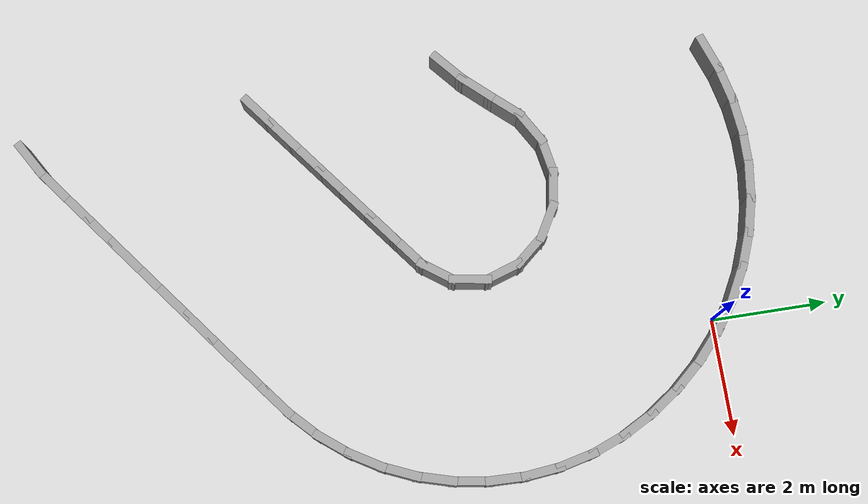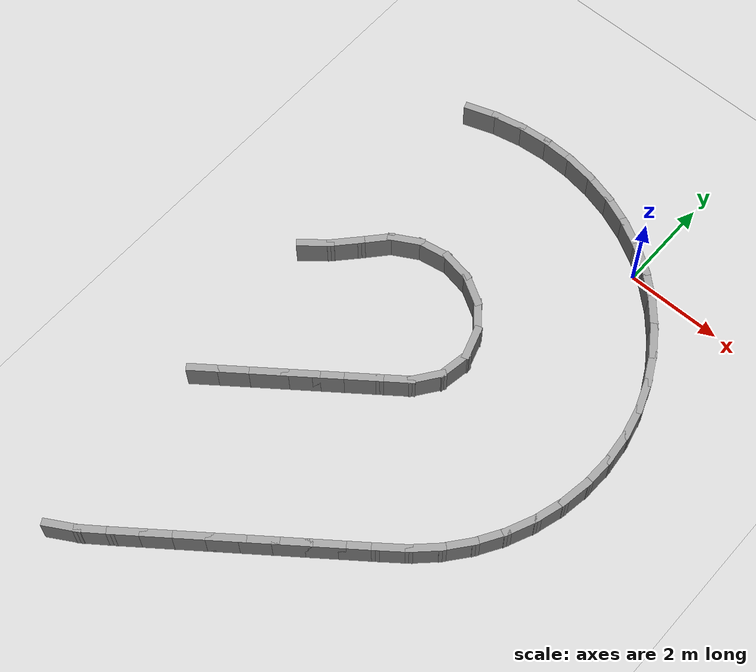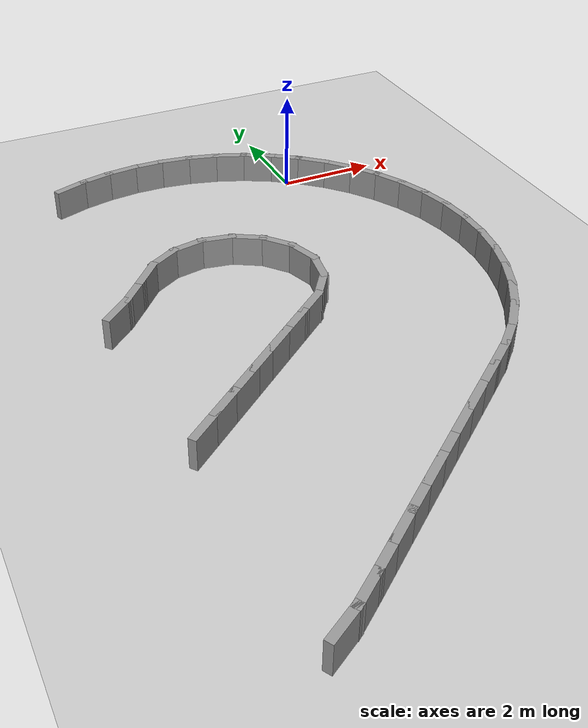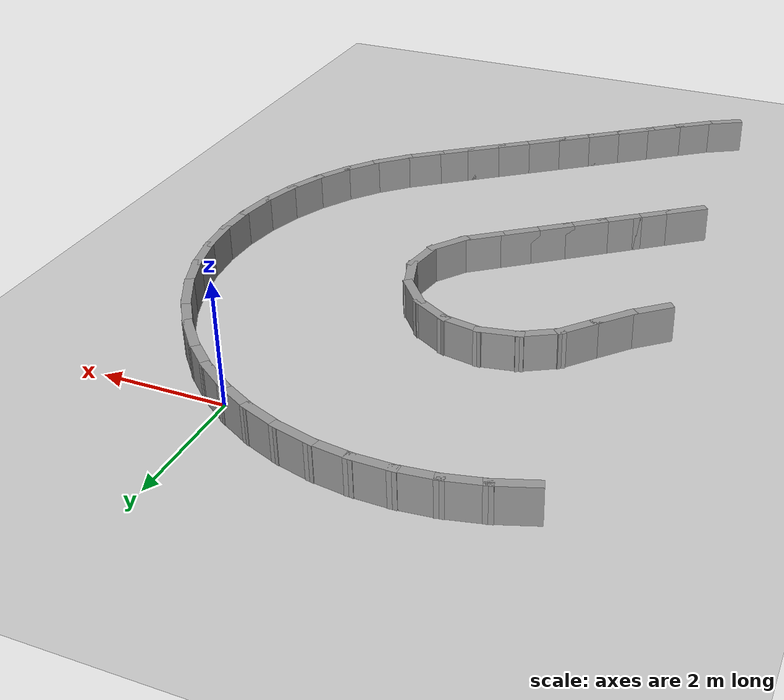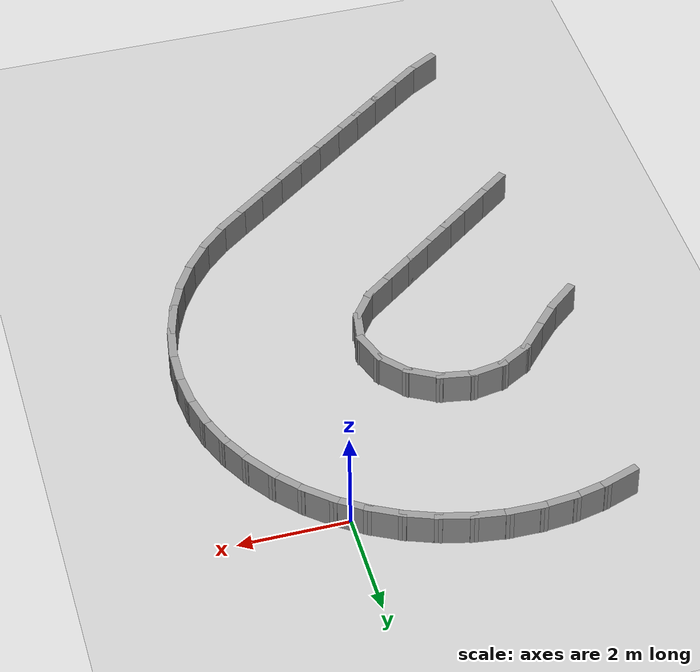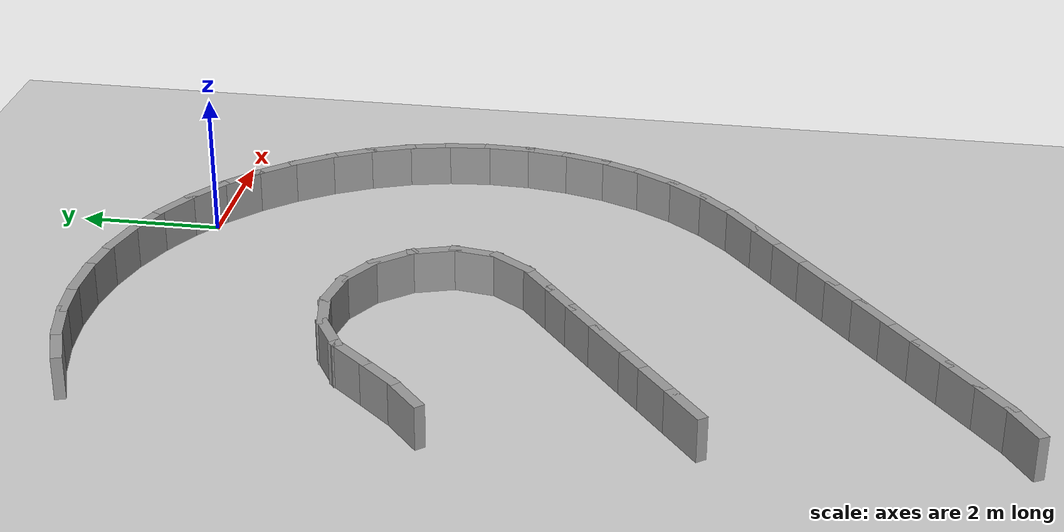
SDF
<sdf version="1.7">
 <world name="default">
  <model name="ground_plane">
   <static>1</static>
   <link name="link">
    <collision name="collision">
     <geometry><plane><normal>0 0 1</normal><size>100 100</size></plane></geometry>
     <surface><friction><ode><mu>100</mu><mu2>50</mu2></ode></friction></surface>
    </collision>
    <visual name="visual">
     <cast_shadows>0</cast_shadows>
     <geometry><plane><normal>0 0 1</normal><size>100 100</size></plane></geometry>
     <material>
      <script><uri>file://media/materials/scripts/gazebo.material</uri><name>Gazebo/Grey</name></script>
     </material>
    </visual>
   </link>
  </model>
  <model name="rand_turn_00">
   <link name="Wall_8">
    <collision name="Wall_8_Collision">
     <geometry><box><size>0.7496 0.1500 0.6000</size></box></geometry>
     <pose>0 0 0.3000 0 -0 0</pose>
    </collision>
    <visual name="Wall_8_Visual">
     <pose>0 0 0.3000 0 -0 0</pose>
     <geometry><box><size>0.7496 0.1500 0.6000</size></box></geometry>
     <material>
      <script><uri>file://media/materials/scripts/gazebo.material</uri><name>Gazebo/Grey</name></script>
      <ambient>1 1 1 1</ambient>
     </material>
    </visual>
    <pose>-4.5553 0.7645 0 0 -0 0.33355</pose>
   </link>
   <link name="Wall_9">
    <collision name="Wall_9_Collision">
     <geometry><box><size>0.7496 0.1500 0.6000</size></box></geometry>
     <pose>0 0 0.3000 0 -0 0</pose>
    </collision>
    <visual name="Wall_9_Visual">
     <pose>0 0 0.3000 0 -0 0</pose>
     <geometry><box><size>0.7496 0.1500 0.6000</size></box></geometry>
     <material>
      <script><uri>file://media/materials/scripts/gazebo.material</uri><name>Gazebo/Grey</name></script>
      <ambient>1 1 1 1</ambient>
     </material>
    </visual>
    <pose>-3.9792 0.9268 0 0 -0 0.21561</pose>
   </link>
   <link name="Wall_10">
    <collision name="Wall_10_Collision">
     <geometry><box><size>0.7496 0.1500 0.6000</size></box></geometry>
     <pose>0 0 0.3000 0 -0 0</pose>
    </collision>
    <visual name="Wall_10_Visual">
     <pose>0 0 0.3000 0 -0 0</pose>
     <geometry><box><size>0.7496 0.1500 0.6000</size></box></geometry>
     <material>
      <script><uri>file://media/materials/scripts/gazebo.material</uri><name>Gazebo/Grey</name></script>
      <ambient>1 1 1 1</ambient>
     </material>
    </visual>
    <pose>-3.3879 1.0202 0 0 -0 0.09768</pose>
   </link>
   <link name="Wall_11">
    <collision name="Wall_11_Collision">
     <geometry><box><size>0.7496 0.1500 0.6000</size></box></geometry>
     <pose>0 0 0.3000 0 -0 0</pose>
    </collision>
    <visual name="Wall_11_Visual">
     <pose>0 0 0.3000 0 -0 0</pose>
     <geometry><box><size>0.7496 0.1500 0.6000</size></box></geometry>
     <material>
      <script><uri>file://media/materials/scripts/gazebo.material</uri><name>Gazebo/Grey</name></script>
      <ambient>1 1 1 1</ambient>
     </material>
    </visual>
    <pose>-2.7898 1.0434 0 0 -0 -0.02026</pose>
   </link>
   <link name="Wall_12">
    <collision name="Wall_12_Collision">
     <geometry><box><size>0.7496 0.1500 0.6000</size></box></geometry>
     <pose>0 0 0.3000 0 -0 0</pose>
    </collision>
    <visual name="Wall_12_Visual">
     <pose>0 0 0.3000 0 -0 0</pose>
     <geometry><box><size>0.7496 0.1500 0.6000</size></box></geometry>
     <material>
      <script><uri>file://media/materials/scripts/gazebo.material</uri><name>Gazebo/Grey</name></script>
      <ambient>1 1 1 1</ambient>
     </material>
    </visual>
    <pose>-2.1931 0.9960 0 0 -0 -0.13820</pose>
   </link>
   <link name="Wall_13">
    <collision name="Wall_13_Collision">
     <geometry><box><size>0.7496 0.1500 0.6000</size></box></geometry>
     <pose>0 0 0.3000 0 -0 0</pose>
    </collision>
    <visual name="Wall_13_Visual">
     <pose>0 0 0.3000 0 -0 0</pose>
     <geometry><box><size>0.7496 0.1500 0.6000</size></box></geometry>
     <material>
      <script><uri>file://media/materials/scripts/gazebo.material</uri><name>Gazebo/Grey</name></script>
      <ambient>1 1 1 1</ambient>
     </material>
    </visual>
    <pose>-1.6061 0.8787 0 0 -0 -0.25614</pose>
   </link>
   <link name="Wall_14">
    <collision name="Wall_14_Collision">
     <geometry><box><size>0.7496 0.1500 0.6000</size></box></geometry>
     <pose>0 0 0.3000 0 -0 0</pose>
    </collision>
    <visual name="Wall_14_Visual">
     <pose>0 0 0.3000 0 -0 0</pose>
     <geometry><box><size>0.7496 0.1500 0.6000</size></box></geometry>
     <material>
      <script><uri>file://media/materials/scripts/gazebo.material</uri><name>Gazebo/Grey</name></script>
      <ambient>1 1 1 1</ambient>
     </material>
    </visual>
    <pose>-1.0370 0.6932 0 0 -0 -0.37407</pose>
   </link>
   <link name="Wall_15">
    <collision name="Wall_15_Collision">
     <geometry><box><size>0.7496 0.1500 0.6000</size></box></geometry>
     <pose>0 0 0.3000 0 -0 0</pose>
    </collision>
    <visual name="Wall_15_Visual">
     <pose>0 0 0.3000 0 -0 0</pose>
     <geometry><box><size>0.7496 0.1500 0.6000</size></box></geometry>
     <material>
      <script><uri>file://media/materials/scripts/gazebo.material</uri><name>Gazebo/Grey</name></script>
      <ambient>1 1 1 1</ambient>
     </material>
    </visual>
    <pose>-0.4937 0.4420 0 0 -0 -0.49201</pose>
   </link>
   <link name="Wall_16">
    <collision name="Wall_16_Collision">
     <geometry><box><size>0.7496 0.1500 0.6000</size></box></geometry>
     <pose>0 0 0.3000 0 -0 0</pose>
    </collision>
    <visual name="Wall_16_Visual">
     <pose>0 0 0.3000 0 -0 0</pose>
     <geometry><box><size>0.7496 0.1500 0.6000</size></box></geometry>
     <material>
      <script><uri>file://media/materials/scripts/gazebo.material</uri><name>Gazebo/Grey</name></script>
      <ambient>1 1 1 1</ambient>
     </material>
    </visual>
    <pose>0.0163 0.1287 0 0 -0 -0.60995</pose>
   </link>
   <link name="Wall_17">
    <collision name="Wall_17_Collision">
     <geometry><box><size>0.7496 0.1500 0.6000</size></box></geometry>
     <pose>0 0 0.3000 0 -0 0</pose>
    </collision>
    <visual name="Wall_17_Visual">
     <pose>0 0 0.3000 0 -0 0</pose>
     <geometry><box><size>0.7496 0.1500 0.6000</size></box></geometry>
     <material>
      <script><uri>file://media/materials/scripts/gazebo.material</uri><name>Gazebo/Grey</name></script>
      <ambient>1 1 1 1</ambient>
     </material>
    </visual>
    <pose>0.4859 -0.2426 0 0 -0 -0.72788</pose>
   </link>
   <link name="Wall_18">
    <collision name="Wall_18_Collision">
     <geometry><box><size>0.7496 0.1500 0.6000</size></box></geometry>
     <pose>0 0 0.3000 0 -0 0</pose>
    </collision>
    <visual name="Wall_18_Visual">
     <pose>0 0 0.3000 0 -0 0</pose>
     <geometry><box><size>0.7496 0.1500 0.6000</size></box></geometry>
     <material>
      <script><uri>file://media/materials/scripts/gazebo.material</uri><name>Gazebo/Grey</name></script>
      <ambient>1 1 1 1</ambient>
     </material>
    </visual>
    <pose>0.9086 -0.6664 0 0 -0 -0.84582</pose>
   </link>
   <link name="Wall_19">
    <collision name="Wall_19_Collision">
     <geometry><box><size>0.7496 0.1500 0.6000</size></box></geometry>
     <pose>0 0 0.3000 0 -0 0</pose>
    </collision>
    <visual name="Wall_19_Visual">
     <pose>0 0 0.3000 0 -0 0</pose>
     <geometry><box><size>0.7496 0.1500 0.6000</size></box></geometry>
     <material>
      <script><uri>file://media/materials/scripts/gazebo.material</uri><name>Gazebo/Grey</name></script>
      <ambient>1 1 1 1</ambient>
     </material>
    </visual>
    <pose>1.2784 -1.1371 0 0 -0 -0.96376</pose>
   </link>
   <link name="Wall_20">
    <collision name="Wall_20_Collision">
     <geometry><box><size>0.7496 0.1500 0.6000</size></box></geometry>
     <pose>0 0 0.3000 0 -0 0</pose>
    </collision>
    <visual name="Wall_20_Visual">
     <pose>0 0 0.3000 0 -0 0</pose>
     <geometry><box><size>0.7496 0.1500 0.6000</size></box></geometry>
     <material>
      <script><uri>file://media/materials/scripts/gazebo.material</uri><name>Gazebo/Grey</name></script>
      <ambient>1 1 1 1</ambient>
     </material>
    </visual>
    <pose>1.5903 -1.6480 0 0 -0 -1.08170</pose>
   </link>
   <link name="Wall_21">
    <collision name="Wall_21_Collision">
     <geometry><box><size>0.7495 0.1500 0.6000</size></box></geometry>
     <pose>0 0 0.3000 0 -0 0</pose>
    </collision>
    <visual name="Wall_21_Visual">
     <pose>0 0 0.3000 0 -0 0</pose>
     <geometry><box><size>0.7495 0.1500 0.6000</size></box></geometry>
     <material>
      <script><uri>file://media/materials/scripts/gazebo.material</uri><name>Gazebo/Grey</name></script>
      <ambient>1 1 1 1</ambient>
     </material>
    </visual>
    <pose>1.8387 -2.1925 0 0 -0 -1.20371</pose>
   </link>
   <link name="Wall_22">
    <collision name="Wall_22_Collision">
     <geometry><box><size>0.7495 0.1500 0.6000</size></box></geometry>
     <pose>0 0 0.3000 0 -0 0</pose>
    </collision>
    <visual name="Wall_22_Visual">
     <pose>0 0 0.3000 0 -0 0</pose>
     <geometry><box><size>0.7495 0.1500 0.6000</size></box></geometry>
     <material>
      <script><uri>file://media/materials/scripts/gazebo.material</uri><name>Gazebo/Grey</name></script>
      <ambient>1 1 1 1</ambient>
     </material>
    </visual>
    <pose>2.0146 -2.7641 0 0 -0 -1.34086</pose>
   </link>
   <link name="Wall_23">
    <collision name="Wall_23_Collision">
     <geometry><box><size>0.7495 0.1500 0.6000</size></box></geometry>
     <pose>0 0 0.3000 0 -0 0</pose>
    </collision>
    <visual name="Wall_23_Visual">
     <pose>0 0 0.3000 0 -0 0</pose>
     <geometry><box><size>0.7495 0.1500 0.6000</size></box></geometry>
     <material>
      <script><uri>file://media/materials/scripts/gazebo.material</uri><name>Gazebo/Grey</name></script>
      <ambient>1 1 1 1</ambient>
     </material>
    </visual>
    <pose>2.1131 -3.3543 0 0 -0 -1.47015</pose>
   </link>
   <link name="Wall_24">
    <collision name="Wall_24_Collision">
     <geometry><box><size>0.7496 0.1500 0.6000</size></box></geometry>
     <pose>0 0 0.3000 0 -0 0</pose>
    </collision>
    <visual name="Wall_24_Visual">
     <pose>0 0 0.3000 0 -0 0</pose>
     <geometry><box><size>0.7496 0.1500 0.6000</size></box></geometry>
     <material>
      <script><uri>file://media/materials/scripts/gazebo.material</uri><name>Gazebo/Grey</name></script>
      <ambient>1 1 1 1</ambient>
     </material>
    </visual>
    <pose>2.1347 -3.9522 0 0 -0 -1.59920</pose>
   </link>
   <link name="Wall_25">
    <collision name="Wall_25_Collision">
     <geometry><box><size>0.7496 0.1500 0.6000</size></box></geometry>
     <pose>0 0 0.3000 0 -0 0</pose>
    </collision>
    <visual name="Wall_25_Visual">
     <pose>0 0 0.3000 0 -0 0</pose>
     <geometry><box><size>0.7496 0.1500 0.6000</size></box></geometry>
     <material>
      <script><uri>file://media/materials/scripts/gazebo.material</uri><name>Gazebo/Grey</name></script>
      <ambient>1 1 1 1</ambient>
     </material>
    </visual>
    <pose>2.0789 -4.5479 0 0 -0 -1.72908</pose>
   </link>
   <link name="Wall_26">
    <collision name="Wall_26_Collision">
     <geometry><box><size>0.7496 0.1500 0.6000</size></box></geometry>
     <pose>0 0 0.3000 0 -0 0</pose>
    </collision>
    <visual name="Wall_26_Visual">
     <pose>0 0 0.3000 0 -0 0</pose>
     <geometry><box><size>0.7496 0.1500 0.6000</size></box></geometry>
     <material>
      <script><uri>file://media/materials/scripts/gazebo.material</uri><name>Gazebo/Grey</name></script>
      <ambient>1 1 1 1</ambient>
     </material>
    </visual>
    <pose>1.9465 -5.1314 0 0 -0 -1.85879</pose>
   </link>
   <link name="Wall_27">
    <collision name="Wall_27_Collision">
     <geometry><box><size>0.7495 0.1500 0.6000</size></box></geometry>
     <pose>0 0 0.3000 0 -0 0</pose>
    </collision>
    <visual name="Wall_27_Visual">
     <pose>0 0 0.3000 0 -0 0</pose>
     <geometry><box><size>0.7495 0.1500 0.6000</size></box></geometry>
     <material>
      <script><uri>file://media/materials/scripts/gazebo.material</uri><name>Gazebo/Grey</name></script>
      <ambient>1 1 1 1</ambient>
     </material>
    </visual>
    <pose>1.7400 -5.6929 0 0 -0 -1.98783</pose>
   </link>
   <link name="Wall_28">
    <collision name="Wall_28_Collision">
     <geometry><box><size>0.7495 0.1500 0.6000</size></box></geometry>
     <pose>0 0 0.3000 0 -0 0</pose>
    </collision>
    <visual name="Wall_28_Visual">
     <pose>0 0 0.3000 0 -0 0</pose>
     <geometry><box><size>0.7495 0.1500 0.6000</size></box></geometry>
     <material>
      <script><uri>file://media/materials/scripts/gazebo.material</uri><name>Gazebo/Grey</name></script>
      <ambient>1 1 1 1</ambient>
     </material>
    </visual>
    <pose>1.4629 -6.2231 0 0 -0 -2.11688</pose>
   </link>
   <link name="Wall_29">
    <collision name="Wall_29_Collision">
     <geometry><box><size>0.7495 0.1500 0.6000</size></box></geometry>
     <pose>0 0 0.3000 0 -0 0</pose>
    </collision>
    <visual name="Wall_29_Visual">
     <pose>0 0 0.3000 0 -0 0</pose>
     <geometry><box><size>0.7495 0.1500 0.6000</size></box></geometry>
     <material>
      <script><uri>file://media/materials/scripts/gazebo.material</uri><name>Gazebo/Grey</name></script>
      <ambient>1 1 1 1</ambient>
     </material>
    </visual>
    <pose>1.1198 -6.7133 0 0 -0 -2.24592</pose>
   </link>
   <link name="Wall_30">
    <collision name="Wall_30_Collision">
     <geometry><box><size>0.7496 0.1500 0.6000</size></box></geometry>
     <pose>0 0 0.3000 0 -0 0</pose>
    </collision>
    <visual name="Wall_30_Visual">
     <pose>0 0 0.3000 0 -0 0</pose>
     <geometry><box><size>0.7496 0.1500 0.6000</size></box></geometry>
     <material>
      <script><uri>file://media/materials/scripts/gazebo.material</uri><name>Gazebo/Grey</name></script>
      <ambient>1 1 1 1</ambient>
     </material>
    </visual>
    <pose>0.7165 -7.1553 0 0 -0 -2.37497</pose>
   </link>
   <link name="Wall_31">
    <collision name="Wall_31_Collision">
     <geometry><box><size>0.7499 0.1500 0.6000</size></box></geometry>
     <pose>0 0 0.3000 0 -0 0</pose>
    </collision>
    <visual name="Wall_31_Visual">
     <pose>0 0 0.3000 0 -0 0</pose>
     <geometry><box><size>0.7499 0.1500 0.6000</size></box></geometry>
     <material>
      <script><uri>file://media/materials/scripts/gazebo.material</uri><name>Gazebo/Grey</name></script>
      <ambient>1 1 1 1</ambient>
     </material>
    </visual>
    <pose>0.2639 -7.5475 0 0 -0 -2.48004</pose>
   </link>
   <link name="Wall_32">
    <collision name="Wall_32_Collision">
     <geometry><box><size>0.7500 0.1500 0.6000</size></box></geometry>
     <pose>0 0 0.3000 0 -0 0</pose>
    </collision>
    <visual name="Wall_32_Visual">
     <pose>0 0 0.3000 0 -0 0</pose>
     <geometry><box><size>0.7500 0.1500 0.6000</size></box></geometry>
     <material>
      <script><uri>file://media/materials/scripts/gazebo.material</uri><name>Gazebo/Grey</name></script>
      <ambient>1 1 1 1</ambient>
     </material>
    </visual>
    <pose>-0.2110 -7.9140 0 0 -0 -2.48869</pose>
   </link>
   <link name="Wall_33">
    <collision name="Wall_33_Collision">
     <geometry><box><size>0.7500 0.1500 0.6000</size></box></geometry>
     <pose>0 0 0.3000 0 -0 0</pose>
    </collision>
    <visual name="Wall_33_Visual">
     <pose>0 0 0.3000 0 -0 0</pose>
     <geometry><box><size>0.7500 0.1500 0.6000</size></box></geometry>
     <material>
      <script><uri>file://media/materials/scripts/gazebo.material</uri><name>Gazebo/Grey</name></script>
      <ambient>1 1 1 1</ambient>
     </material>
    </visual>
    <pose>-0.6876 -8.2785 0 0 -0 -2.48869</pose>
   </link>
   <link name="Wall_34">
    <collision name="Wall_34_Collision">
     <geometry><box><size>0.7500 0.1500 0.6000</size></box></geometry>
     <pose>0 0 0.3000 0 -0 0</pose>
    </collision>
    <visual name="Wall_34_Visual">
     <pose>0 0 0.3000 0 -0 0</pose>
     <geometry><box><size>0.7500 0.1500 0.6000</size></box></geometry>
     <material>
      <script><uri>file://media/materials/scripts/gazebo.material</uri><name>Gazebo/Grey</name></script>
      <ambient>1 1 1 1</ambient>
     </material>
    </visual>
    <pose>-1.1642 -8.6430 0 0 -0 -2.48869</pose>
   </link>
   <link name="Wall_35">
    <collision name="Wall_35_Collision">
     <geometry><box><size>0.7500 0.1500 0.6000</size></box></geometry>
     <pose>0 0 0.3000 0 -0 0</pose>
    </collision>
    <visual name="Wall_35_Visual">
     <pose>0 0 0.3000 0 -0 0</pose>
     <geometry><box><size>0.7500 0.1500 0.6000</size></box></geometry>
     <material>
      <script><uri>file://media/materials/scripts/gazebo.material</uri><name>Gazebo/Grey</name></script>
      <ambient>1 1 1 1</ambient>
     </material>
    </visual>
    <pose>-1.6408 -9.0075 0 0 -0 -2.48869</pose>
   </link>
   <link name="Wall_36">
    <collision name="Wall_36_Collision">
     <geometry><box><size>0.7500 0.1500 0.6000</size></box></geometry>
     <pose>0 0 0.3000 0 -0 0</pose>
    </collision>
    <visual name="Wall_36_Visual">
     <pose>0 0 0.3000 0 -0 0</pose>
     <geometry><box><size>0.7500 0.1500 0.6000</size></box></geometry>
     <material>
      <script><uri>file://media/materials/scripts/gazebo.material</uri><name>Gazebo/Grey</name></script>
      <ambient>1 1 1 1</ambient>
     </material>
    </visual>
    <pose>-2.1174 -9.3720 0 0 -0 -2.48869</pose>
   </link>
   <link name="Wall_37">
    <collision name="Wall_37_Collision">
     <geometry><box><size>0.7500 0.1500 0.6000</size></box></geometry>
     <pose>0 0 0.3000 0 -0 0</pose>
    </collision>
    <visual name="Wall_37_Visual">
     <pose>0 0 0.3000 0 -0 0</pose>
     <geometry><box><size>0.7500 0.1500 0.6000</size></box></geometry>
     <material>
      <script><uri>file://media/materials/scripts/gazebo.material</uri><name>Gazebo/Grey</name></script>
      <ambient>1 1 1 1</ambient>
     </material>
    </visual>
    <pose>-2.5940 -9.7365 0 0 -0 -2.48869</pose>
   </link>
   <link name="Wall_38">
    <collision name="Wall_38_Collision">
     <geometry><box><size>0.7500 0.1500 0.6000</size></box></geometry>
     <pose>0 0 0.3000 0 -0 0</pose>
    </collision>
    <visual name="Wall_38_Visual">
     <pose>0 0 0.3000 0 -0 0</pose>
     <geometry><box><size>0.7500 0.1500 0.6000</size></box></geometry>
     <material>
      <script><uri>file://media/materials/scripts/gazebo.material</uri><name>Gazebo/Grey</name></script>
      <ambient>1 1 1 1</ambient>
     </material>
    </visual>
    <pose>-3.0706 -10.1010 0 0 -0 -2.48869</pose>
   </link>
   <link name="Wall_39">
    <collision name="Wall_39_Collision">
     <geometry><box><size>0.7500 0.1500 0.6000</size></box></geometry>
     <pose>0 0 0.3000 0 -0 0</pose>
    </collision>
    <visual name="Wall_39_Visual">
     <pose>0 0 0.3000 0 -0 0</pose>
     <geometry><box><size>0.7500 0.1500 0.6000</size></box></geometry>
     <material>
      <script><uri>file://media/materials/scripts/gazebo.material</uri><name>Gazebo/Grey</name></script>
      <ambient>1 1 1 1</ambient>
     </material>
    </visual>
    <pose>-3.5472 -10.4655 0 0 -0 -2.48869</pose>
   </link>
   <link name="Wall_40">
    <collision name="Wall_40_Collision">
     <geometry><box><size>0.7499 0.1500 0.6000</size></box></geometry>
     <pose>0 0 0.3000 0 -0 0</pose>
    </collision>
    <visual name="Wall_40_Visual">
     <pose>0 0 0.3000 0 -0 0</pose>
     <geometry><box><size>0.7499 0.1500 0.6000</size></box></geometry>
     <material>
      <script><uri>file://media/materials/scripts/gazebo.material</uri><name>Gazebo/Grey</name></script>
      <ambient>1 1 1 1</ambient>
     </material>
    </visual>
    <pose>-4.0258 -10.8273 0 0 -0 -2.49975</pose>
   </link>
   <link name="Wall_41">
    <collision name="Wall_41_Collision">
     <geometry><box><size>0.7495 0.1500 0.6000</size></box></geometry>
     <pose>0 0 0.3000 0 -0 0</pose>
    </collision>
    <visual name="Wall_41_Visual">
     <pose>0 0 0.3000 0 -0 0</pose>
     <geometry><box><size>0.7495 0.1500 0.6000</size></box></geometry>
     <material>
      <script><uri>file://media/materials/scripts/gazebo.material</uri><name>Gazebo/Grey</name></script>
      <ambient>1 1 1 1</ambient>
     </material>
    </visual>
    <pose>-4.5245 -11.1586 0 0 -0 -2.61095</pose>
   </link>
   <link name="Wall_72">
    <collision name="Wall_72_Collision">
     <geometry><box><size>0.7496 0.1500 0.6000</size></box></geometry>
     <pose>0 0 0.3000 0 -0 0</pose>
    </collision>
    <visual name="Wall_72_Visual">
     <pose>0 0 0.3000 0 -0 0</pose>
     <geometry><box><size>0.7496 0.1500 0.6000</size></box></geometry>
     <material>
      <script><uri>file://media/materials/scripts/gazebo.material</uri><name>Gazebo/Grey</name></script>
      <ambient>1 1 1 1</ambient>
     </material>
    </visual>
    <pose>-5.0304 -3.7851 0 0 -0 0.70458</pose>
   </link>
   <link name="Wall_73">
    <collision name="Wall_73_Collision">
     <geometry><box><size>0.7496 0.1500 0.6000</size></box></geometry>
     <pose>0 0 0.3000 0 -0 0</pose>
    </collision>
    <visual name="Wall_73_Visual">
     <pose>0 0 0.3000 0 -0 0</pose>
     <geometry><box><size>0.7496 0.1500 0.6000</size></box></geometry>
     <material>
      <script><uri>file://media/materials/scripts/gazebo.material</uri><name>Gazebo/Grey</name></script>
      <ambient>1 1 1 1</ambient>
     </material>
    </visual>
    <pose>-4.5991 -3.3701 0 0 -0 0.82754</pose>
   </link>
   <link name="Wall_74">
    <collision name="Wall_74_Collision">
     <geometry><box><size>0.7484 0.1500 0.6000</size></box></geometry>
     <pose>0 0 0.3000 0 -0 0</pose>
    </collision>
    <visual name="Wall_74_Visual">
     <pose>0 0 0.3000 0 -0 0</pose>
     <geometry><box><size>0.7484 0.1500 0.6000</size></box></geometry>
     <material>
      <script><uri>file://media/materials/scripts/gazebo.material</uri><name>Gazebo/Grey</name></script>
      <ambient>1 1 1 1</ambient>
     </material>
    </visual>
    <pose>-4.1970 -2.9261 0 0 -0 0.84232</pose>
   </link>
   <link name="Wall_75">
    <collision name="Wall_75_Collision">
     <geometry><box><size>0.7470 0.1500 0.6000</size></box></geometry>
     <pose>0 0 0.3000 0 -0 0</pose>
    </collision>
    <visual name="Wall_75_Visual">
     <pose>0 0 0.3000 0 -0 0</pose>
     <geometry><box><size>0.7470 0.1500 0.6000</size></box></geometry>
     <material>
      <script><uri>file://media/materials/scripts/gazebo.material</uri><name>Gazebo/Grey</name></script>
      <ambient>1 1 1 1</ambient>
     </material>
    </visual>
    <pose>-3.7388 -2.5547 0 0 -0 0.51964</pose>
   </link>
   <link name="Wall_76">
    <collision name="Wall_76_Collision">
     <geometry><box><size>0.7470 0.1500 0.6000</size></box></geometry>
     <pose>0 0 0.3000 0 -0 0</pose>
    </collision>
    <visual name="Wall_76_Visual">
     <pose>0 0 0.3000 0 -0 0</pose>
     <geometry><box><size>0.7470 0.1500 0.6000</size></box></geometry>
     <material>
      <script><uri>file://media/materials/scripts/gazebo.material</uri><name>Gazebo/Grey</name></script>
      <ambient>1 1 1 1</ambient>
     </material>
    </visual>
    <pose>-3.1856 -2.3551 0 0 -0 0.17290</pose>
   </link>
   <link name="Wall_77">
    <collision name="Wall_77_Collision">
     <geometry><box><size>0.7470 0.1500 0.6000</size></box></geometry>
     <pose>0 0 0.3000 0 -0 0</pose>
    </collision>
    <visual name="Wall_77_Visual">
     <pose>0 0 0.3000 0 -0 0</pose>
     <geometry><box><size>0.7470 0.1500 0.6000</size></box></geometry>
     <material>
      <script><uri>file://media/materials/scripts/gazebo.material</uri><name>Gazebo/Grey</name></script>
      <ambient>1 1 1 1</ambient>
     </material>
    </visual>
    <pose>-2.5976 -2.3555 0 0 -0 -0.17428</pose>
   </link>
   <link name="Wall_78">
    <collision name="Wall_78_Collision">
     <geometry><box><size>0.7470 0.1500 0.6000</size></box></geometry>
     <pose>0 0 0.3000 0 -0 0</pose>
    </collision>
    <visual name="Wall_78_Visual">
     <pose>0 0 0.3000 0 -0 0</pose>
     <geometry><box><size>0.7470 0.1500 0.6000</size></box></geometry>
     <material>
      <script><uri>file://media/materials/scripts/gazebo.material</uri><name>Gazebo/Grey</name></script>
      <ambient>1 1 1 1</ambient>
     </material>
    </visual>
    <pose>-2.0448 -2.5558 0 0 -0 -0.52104</pose>
   </link>
   <link name="Wall_79">
    <collision name="Wall_79_Collision">
     <geometry><box><size>0.7470 0.1500 0.6000</size></box></geometry>
     <pose>0 0 0.3000 0 -0 0</pose>
    </collision>
    <visual name="Wall_79_Visual">
     <pose>0 0 0.3000 0 -0 0</pose>
     <geometry><box><size>0.7470 0.1500 0.6000</size></box></geometry>
     <material>
      <script><uri>file://media/materials/scripts/gazebo.material</uri><name>Gazebo/Grey</name></script>
      <ambient>1 1 1 1</ambient>
     </material>
    </visual>
    <pose>-1.5929 -2.9321 0 0 -0 -0.86778</pose>
   </link>
   <link name="Wall_80">
    <collision name="Wall_80_Collision">
     <geometry><box><size>0.7441 0.1500 0.6000</size></box></geometry>
     <pose>0 0 0.3000 0 -0 0</pose>
    </collision>
    <visual name="Wall_80_Visual">
     <pose>0 0 0.3000 0 -0 0</pose>
     <geometry><box><size>0.7441 0.1500 0.6000</size></box></geometry>
     <material>
      <script><uri>file://media/materials/scripts/gazebo.material</uri><name>Gazebo/Grey</name></script>
      <ambient>1 1 1 1</ambient>
     </material>
    </visual>
    <pose>-1.3071 -3.4420 0 0 -0 -1.25307</pose>
   </link>
   <link name="Wall_81">
    <collision name="Wall_81_Collision">
     <geometry><box><size>0.7446 0.1500 0.6000</size></box></geometry>
     <pose>0 0 0.3000 0 -0 0</pose>
    </collision>
    <visual name="Wall_81_Visual">
     <pose>0 0 0.3000 0 -0 0</pose>
     <geometry><box><size>0.7446 0.1500 0.6000</size></box></geometry>
     <material>
      <script><uri>file://media/materials/scripts/gazebo.material</uri><name>Gazebo/Grey</name></script>
      <ambient>1 1 1 1</ambient>
     </material>
    </visual>
    <pose>-1.2618 -4.0177 0 0 -0 -1.73110</pose>
   </link>
   <link name="Wall_82">
    <collision name="Wall_82_Collision">
     <geometry><box><size>0.7445 0.1500 0.6000</size></box></geometry>
     <pose>0 0 0.3000 0 -0 0</pose>
    </collision>
    <visual name="Wall_82_Visual">
     <pose>0 0 0.3000 0 -0 0</pose>
     <geometry><box><size>0.7445 0.1500 0.6000</size></box></geometry>
     <material>
      <script><uri>file://media/materials/scripts/gazebo.material</uri><name>Gazebo/Grey</name></script>
      <ambient>1 1 1 1</ambient>
     </material>
    </visual>
    <pose>-1.4839 -4.5517 0 0 -0 -2.19899</pose>
   </link>
   <link name="Wall_83">
    <collision name="Wall_83_Collision">
     <geometry><box><size>0.7500 0.1500 0.6000</size></box></geometry>
     <pose>0 0 0.3000 0 -0 0</pose>
    </collision>
    <visual name="Wall_83_Visual">
     <pose>0 0 0.3000 0 -0 0</pose>
     <geometry><box><size>0.7500 0.1500 0.6000</size></box></geometry>
     <material>
      <script><uri>file://media/materials/scripts/gazebo.material</uri><name>Gazebo/Grey</name></script>
      <ambient>1 1 1 1</ambient>
     </material>
    </visual>
    <pose>-1.8964 -4.9751 0 0 -0 -2.48584</pose>
   </link>
   <link name="Wall_84">
    <collision name="Wall_84_Collision">
     <geometry><box><size>0.7500 0.1500 0.6000</size></box></geometry>
     <pose>0 0 0.3000 0 -0 0</pose>
    </collision>
    <visual name="Wall_84_Visual">
     <pose>0 0 0.3000 0 -0 0</pose>
     <geometry><box><size>0.7500 0.1500 0.6000</size></box></geometry>
     <material>
      <script><uri>file://media/materials/scripts/gazebo.material</uri><name>Gazebo/Grey</name></script>
      <ambient>1 1 1 1</ambient>
     </material>
    </visual>
    <pose>-2.3725 -5.3403 0 0 -0 -2.48869</pose>
   </link>
   <link name="Wall_85">
    <collision name="Wall_85_Collision">
     <geometry><box><size>0.7500 0.1500 0.6000</size></box></geometry>
     <pose>0 0 0.3000 0 -0 0</pose>
    </collision>
    <visual name="Wall_85_Visual">
     <pose>0 0 0.3000 0 -0 0</pose>
     <geometry><box><size>0.7500 0.1500 0.6000</size></box></geometry>
     <material>
      <script><uri>file://media/materials/scripts/gazebo.material</uri><name>Gazebo/Grey</name></script>
      <ambient>1 1 1 1</ambient>
     </material>
    </visual>
    <pose>-2.8491 -5.7048 0 0 -0 -2.48869</pose>
   </link>
   <link name="Wall_86">
    <collision name="Wall_86_Collision">
     <geometry><box><size>0.7500 0.1500 0.6000</size></box></geometry>
     <pose>0 0 0.3000 0 -0 0</pose>
    </collision>
    <visual name="Wall_86_Visual">
     <pose>0 0 0.3000 0 -0 0</pose>
     <geometry><box><size>0.7500 0.1500 0.6000</size></box></geometry>
     <material>
      <script><uri>file://media/materials/scripts/gazebo.material</uri><name>Gazebo/Grey</name></script>
      <ambient>1 1 1 1</ambient>
     </material>
    </visual>
    <pose>-3.3257 -6.0693 0 0 -0 -2.48869</pose>
   </link>
   <link name="Wall_87">
    <collision name="Wall_87_Collision">
     <geometry><box><size>0.7500 0.1500 0.6000</size></box></geometry>
     <pose>0 0 0.3000 0 -0 0</pose>
    </collision>
    <visual name="Wall_87_Visual">
     <pose>0 0 0.3000 0 -0 0</pose>
     <geometry><box><size>0.7500 0.1500 0.6000</size></box></geometry>
     <material>
      <script><uri>file://media/materials/scripts/gazebo.material</uri><name>Gazebo/Grey</name></script>
      <ambient>1 1 1 1</ambient>
     </material>
    </visual>
    <pose>-3.8022 -6.4338 0 0 -0 -2.48869</pose>
   </link>
   <link name="Wall_88">
    <collision name="Wall_88_Collision">
     <geometry><box><size>0.7500 0.1500 0.6000</size></box></geometry>
     <pose>0 0 0.3000 0 -0 0</pose>
    </collision>
    <visual name="Wall_88_Visual">
     <pose>0 0 0.3000 0 -0 0</pose>
     <geometry><box><size>0.7500 0.1500 0.6000</size></box></geometry>
     <material>
      <script><uri>file://media/materials/scripts/gazebo.material</uri><name>Gazebo/Grey</name></script>
      <ambient>1 1 1 1</ambient>
     </material>
    </visual>
    <pose>-4.2788 -6.7983 0 0 -0 -2.48869</pose>
   </link>
   <link name="Wall_89">
    <collision name="Wall_89_Collision">
     <geometry><box><size>0.7500 0.1500 0.6000</size></box></geometry>
     <pose>0 0 0.3000 0 -0 0</pose>
    </collision>
    <visual name="Wall_89_Visual">
     <pose>0 0 0.3000 0 -0 0</pose>
     <geometry><box><size>0.7500 0.1500 0.6000</size></box></geometry>
     <material>
      <script><uri>file://media/materials/scripts/gazebo.material</uri><name>Gazebo/Grey</name></script>
      <ambient>1 1 1 1</ambient>
     </material>
    </visual>
    <pose>-4.7554 -7.1628 0 0 -0 -2.48869</pose>
   </link>
   <static>1</static>
  </model>
 </world>
</sdf>
